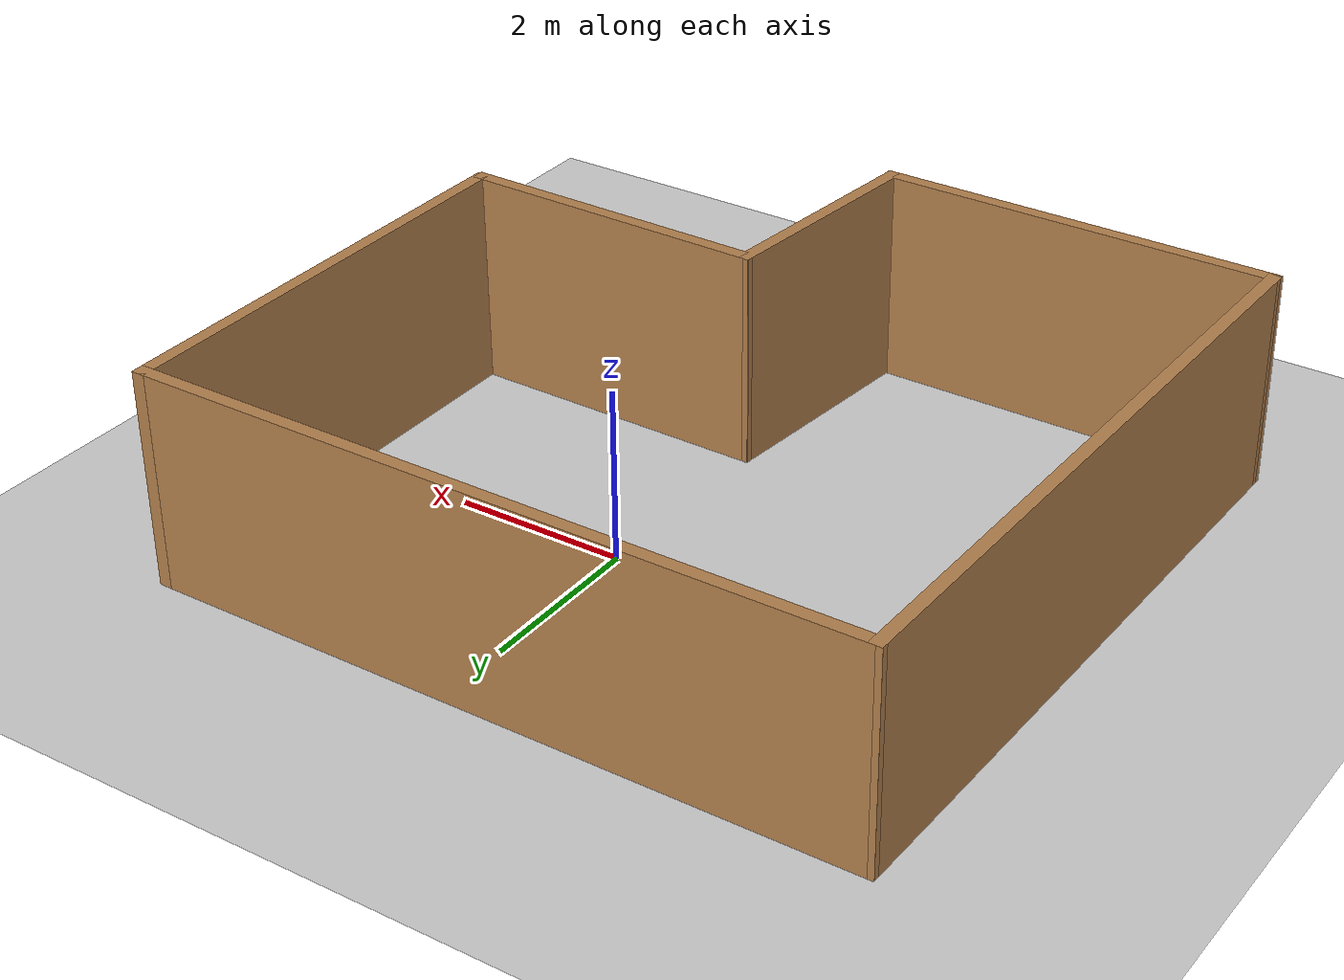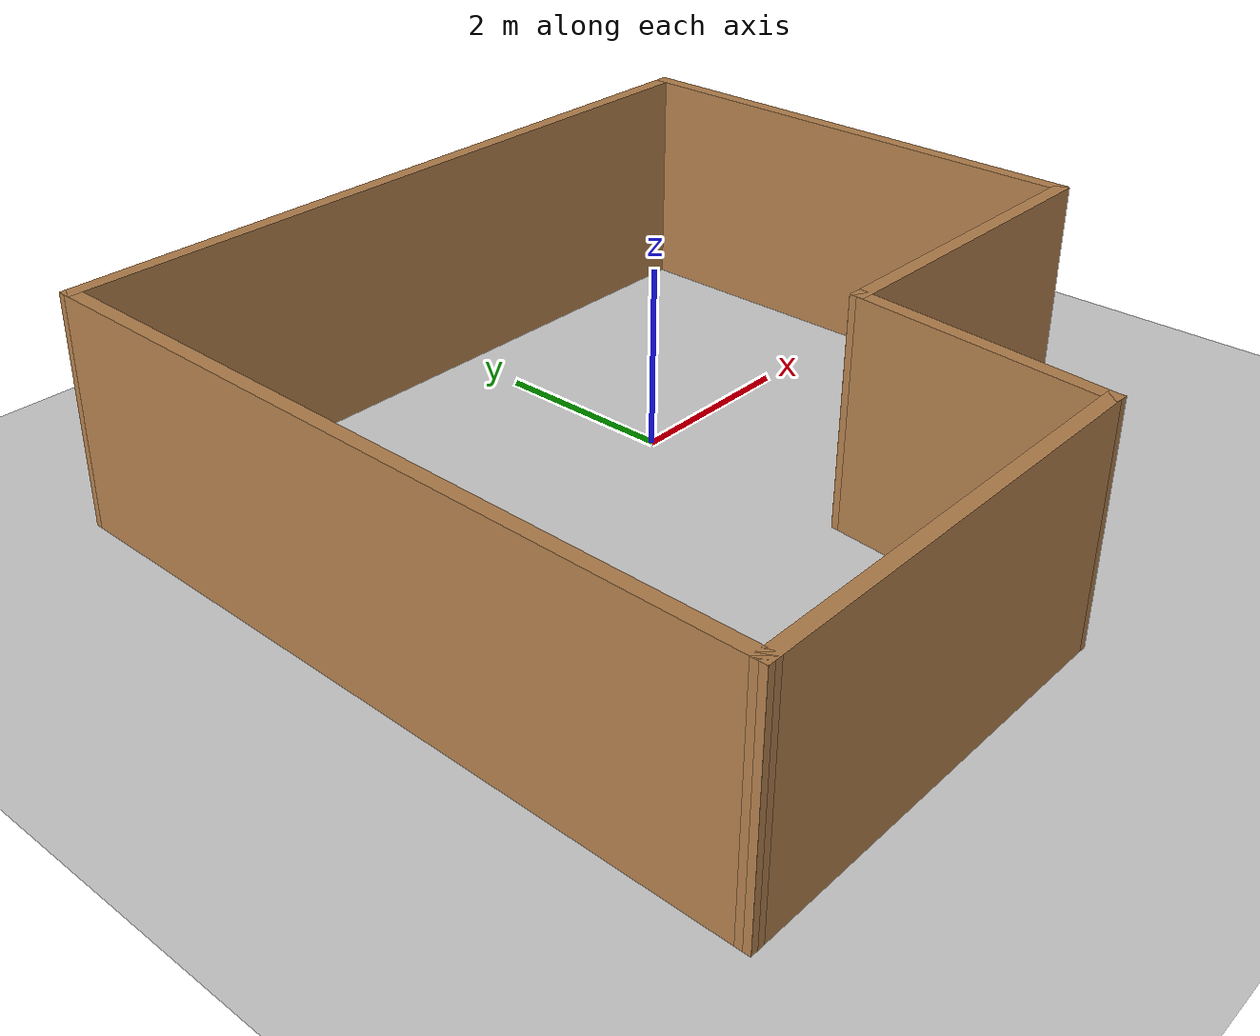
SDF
<sdf version="1.7">
 <world name="default">
  <light name="sun" type="directional">
   <pose>0 0 10 0 -0 0</pose>
   <diffuse>0.8 0.8 0.8 1</diffuse>
   <specular>0.2 0.2 0.2 1</specular>
   <attenuation>
    <range>1000</range>
    <constant>0.9</constant>
    <linear>0.01</linear>
    <quadratic>0.001</quadratic>
   </attenuation>
   <direction>-0.5 0.1 -0.9</direction>
   <spot><inner_angle>0</inner_angle><outer_angle>0</outer_angle><falloff>0</falloff></spot>
  </light>
  <model name="ground_plane">
   <static>1</static>
   <link name="link">
    <collision name="collision">
     <geometry><plane><normal>0 0 1</normal><size>100 100</size></plane></geometry>
     <surface><friction><ode><mu>100</mu><mu2>50</mu2></ode></friction></surface>
    </collision>
    <visual name="visual">
     <cast_shadows>0</cast_shadows>
     <geometry><plane><normal>0 0 1</normal><size>100 100</size></plane></geometry>
     <material>
      <script><uri>file://media/materials/scripts/gazebo.material</uri><name>Gazebo/Grey</name></script>
     </material>
    </visual>
   </link>
  </model>
  <gravity>0 0 -9.8</gravity>
  <magnetic_field>6e-06 2.3e-05 -4.2e-05</magnetic_field>
  <atmosphere type="adiabatic"/>
  <physics type="ode">
   <max_step_size>0.001</max_step_size>
   <real_time_factor>1</real_time_factor>
   <real_time_update_rate>1000</real_time_update_rate>
  </physics>
  <scene><ambient>0.4 0.4 0.4 1</ambient><background>0.7 0.7 0.7 1</background><shadows>1</shadows></scene>
  <spherical_coordinates>
   <surface_model>EARTH_WGS84</surface_model>
   <latitude_deg>0</latitude_deg>
   <longitude_deg>0</longitude_deg>
   <elevation>0</elevation>
   <heading_deg>0</heading_deg>
  </spherical_coordinates>
  <model name="workshop">
   <pose>-0.653661 -1.08374 0 0 -0 0</pose>
   <link name="Wall_0">
    <collision name="Wall_0_Collision">
     <geometry><box><size>8.08365 0.15 2.5</size></box></geometry>
     <pose>0 0 1.25 0 -0 0</pose>
    </collision>
    <visual name="Wall_0_Visual">
     <pose>0 0 1.25 0 -0 0</pose>
     <geometry><box><size>8.08365 0.15 2.5</size></box></geometry>
     <material>
      <script><uri>file://media/materials/scripts/gazebo.material</uri><name>Gazebo/Wood</name></script>
      <ambient>1 1 1 1</ambient>
     </material>
     <meta><layer>0</layer></meta>
    </visual>
    <pose>-4.17458 0.003119 0 0 -0 -1.58213</pose>
   </link>
   <link name="Wall_1">
    <collision name="Wall_1_Collision">
     <geometry><box><size>4.75 0.15 2.5</size></box></geometry>
     <pose>0 0 1.25 0 -0 0</pose>
    </collision>
    <visual name="Wall_1_Visual">
     <pose>0 0 1.25 0 -0 0</pose>
     <geometry><box><size>4.75 0.15 2.5</size></box></geometry>
     <material>
      <script><uri>file://media/materials/scripts/gazebo.material</uri><name>Gazebo/Wood</name></script>
      <ambient>1 1 1 1</ambient>
     </material>
     <meta><layer>0</layer></meta>
    </visual>
    <pose>-1.91953 -3.96345 0 0 -0 0</pose>
   </link>
   <link name="Wall_2">
    <collision name="Wall_2_Collision">
     <geometry><box><size>2.76626 0.15 2.5</size></box></geometry>
     <pose>0 0 1.25 0 -0 0</pose>
    </collision>
    <visual name="Wall_2_Visual">
     <pose>0 0 1.25 0 -0 0</pose>
     <geometry><box><size>2.76626 0.15 2.5</size></box></geometry>
     <material>
      <script><uri>file://media/materials/scripts/gazebo.material</uri><name>Gazebo/Wood</name></script>
      <ambient>1 1 1 1</ambient>
     </material>
     <meta><layer>0</layer></meta>
    </visual>
    <pose>0.510504 -2.6618 0 0 -0 1.47122</pose>
   </link>
   <link name="Wall_3">
    <collision name="Wall_3_Collision">
     <geometry><box><size>3.7099 0.15 2.5</size></box></geometry>
     <pose>0 0 1.25 0 -0 0</pose>
    </collision>
    <visual name="Wall_3_Visual">
     <pose>0 0 1.25 0 -0 0</pose>
     <geometry><box><size>3.7099 0.15 2.5</size></box></geometry>
     <material>
      <script><uri>file://media/materials/scripts/gazebo.material</uri><name>Gazebo/Wood</name></script>
      <ambient>1 1 1 1</ambient>
     </material>
     <meta><layer>0</layer></meta>
    </visual>
    <pose>2.42038 -1.38031 0 0 -0 -0.011329</pose>
   </link>
   <link name="Wall_4">
    <collision name="Wall_4_Collision">
     <geometry><box><size>5.5 0.15 2.5</size></box></geometry>
     <pose>0 0 1.25 0 -0 0</pose>
    </collision>
    <visual name="Wall_4_Visual">
     <pose>0 0 1.25 0 -0 0</pose>
     <geometry><box><size>5.5 0.15 2.5</size></box></geometry>
     <material>
      <script><uri>file://media/materials/scripts/gazebo.material</uri><name>Gazebo/Wood</name></script>
      <ambient>1 1 1 1</ambient>
     </material>
     <meta><layer>0</layer></meta>
    </visual>
    <pose>4.22038 1.29469 0 0 -0 1.5708</pose>
   </link>
   <link name="Wall_5">
    <collision name="Wall_5_Collision">
     <geometry><box><size>8.5 0.15 2.5</size></box></geometry>
     <pose>0 0 1.25 0 -0 0</pose>
    </collision>
    <visual name="Wall_5_Visual">
     <pose>0 0 1.25 0 -0 0</pose>
     <geometry><box><size>8.5 0.15 2.5</size></box></geometry>
     <material>
      <script><uri>file://media/materials/scripts/gazebo.material</uri><name>Gazebo/Wood</name></script>
      <ambient>1 1 1 1</ambient>
     </material>
     <meta><layer>0</layer></meta>
    </visual>
    <pose>0.04538 3.96969 0 0 -0 3.14159</pose>
   </link>
   <static>1</static>
  </model>
 </world>
</sdf>
